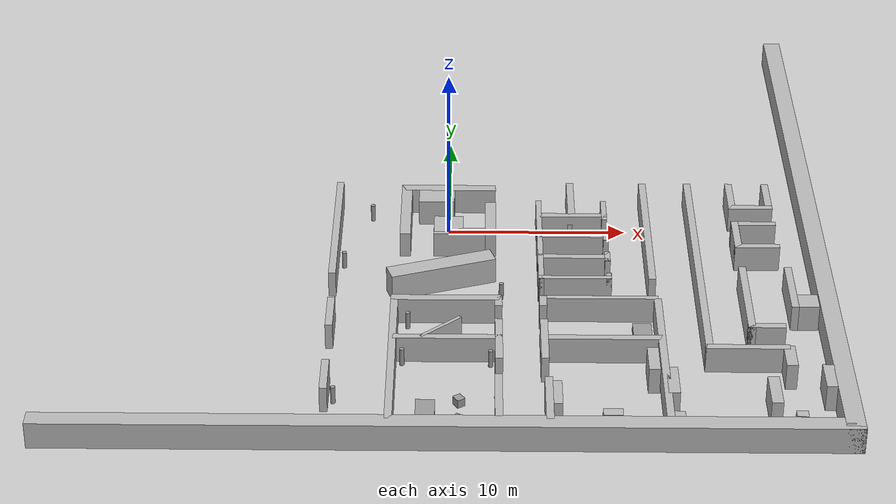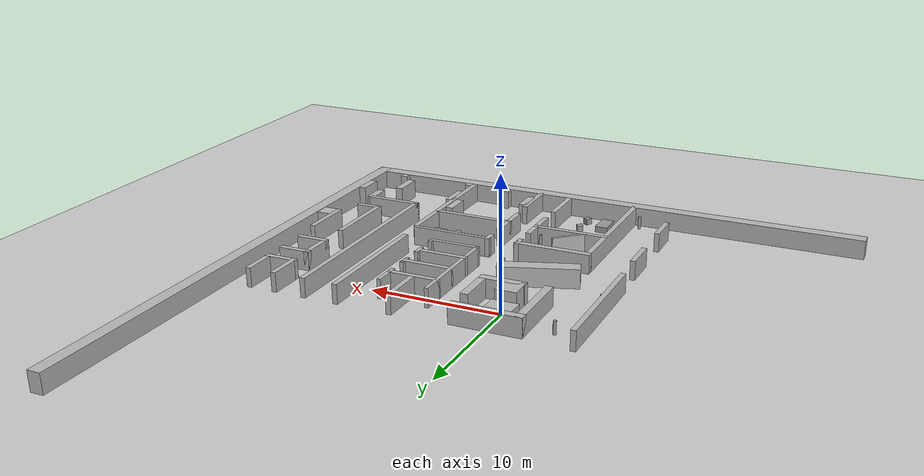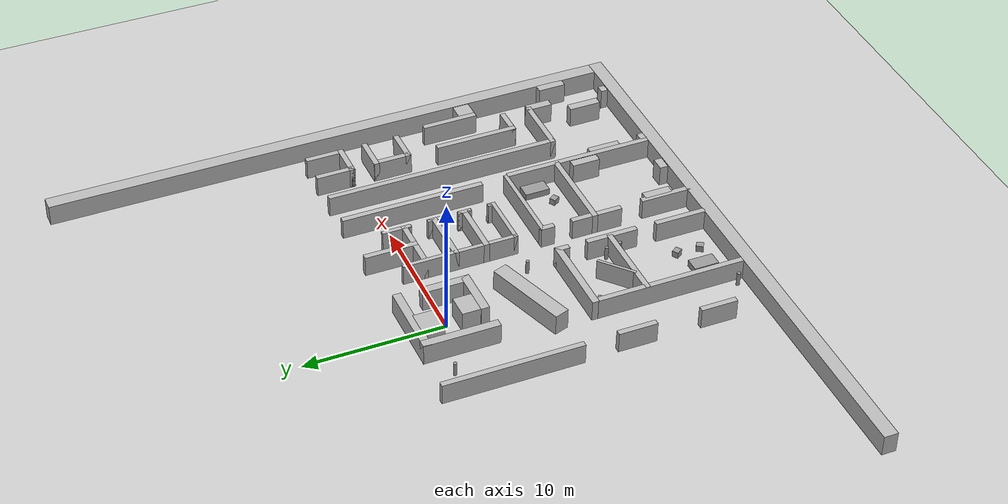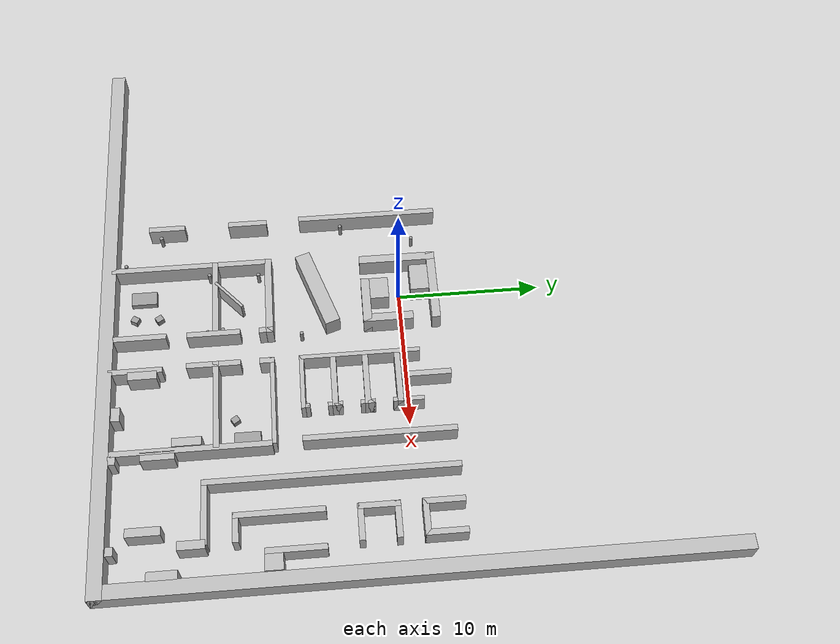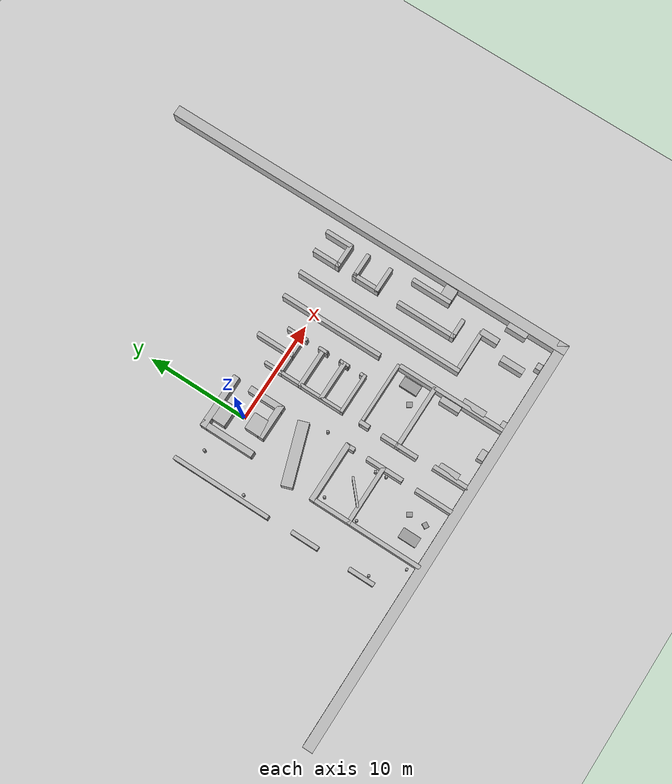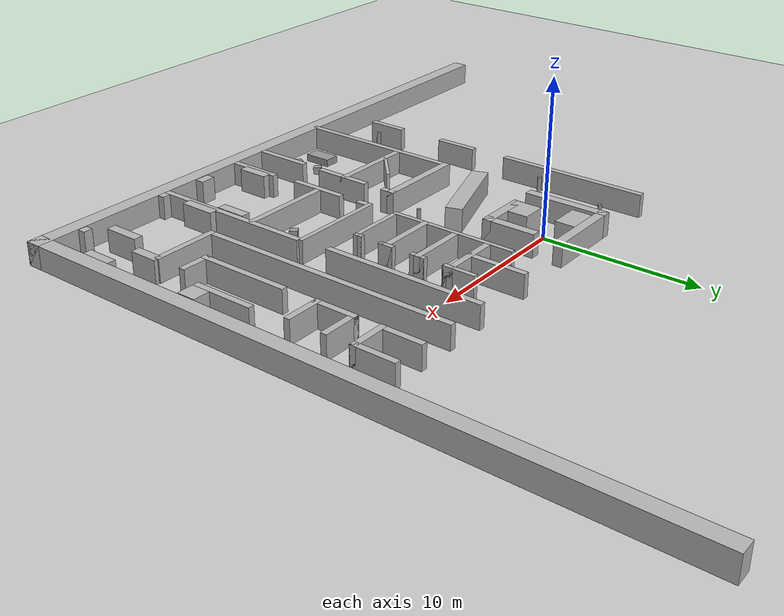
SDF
<sdf version="1.7">
 <world name="test_world">
  <model name="ground_plane">
   <static>1</static>
   <link name="link">
    <collision name="collision">
     <geometry><plane><normal>0 0 1</normal><size>100 100</size></plane></geometry>
    </collision>
    <visual name="visual">
     <geometry><plane><normal>0 0 1</normal><size>100 100</size></plane></geometry>
     <material>
      <script>
       <uri>file://media/materials/scripts/gazebo.material</uri>
       <name>__default__</name>
       <n>Gazebo/Grey</n>
      </script>
     </material>
    </visual>
   </link>
  </model>
  <model name="outer_bottom">
   <static>1</static>
   <pose>0 -20.5 0.75 0 -0 0</pose>
   <link name="link">
    <collision name="collision"><geometry><box><size>42 1 1.5</size></box></geometry></collision>
    <visual name="visual">
     <geometry><box><size>42 1 1.5</size></box></geometry>
     <material>
      <script>
       <uri>file://media/materials/scripts/gazebo.material</uri>
       <name>__default__</name>
       <n>Gazebo/Grey</n>
      </script>
     </material>
    </visual>
   </link>
  </model>
  <model name="outer_right">
   <static>1</static>
   <pose>20.5 0 0.75 0 -0 0</pose>
   <link name="link">
    <collision name="collision"><geometry><box><size>1 42 1.5</size></box></geometry></collision>
    <visual name="visual">
     <geometry><box><size>1 42 1.5</size></box></geometry>
     <material>
      <script>
       <uri>file://media/materials/scripts/gazebo.material</uri>
       <name>__default__</name>
       <n>Gazebo/Grey</n>
      </script>
     </material>
    </visual>
   </link>
  </model>
  <model name="hw_23">
   <static>1</static>
   <pose>-0.380805 -5.75282 0.75 0 -0 0.325273</pose>
   <link name="link">
    <collision name="collision"><geometry><box><size>6 1.07714 1.5</size></box></geometry></collision>
    <visual name="visual">
     <geometry><box><size>6 1.07714 1.5</size></box></geometry>
     <material>
      <script>
       <uri>file://media/materials/scripts/gazebo.material</uri>
       <name>__default__</name>
       <n>Gazebo/Grey</n>
      </script>
     </material>
    </visual>
   </link>
  </model>
  <model name="hw_24">
   <static>1</static>
   <pose>-0.05 -9.2 0.75 0 -0 0</pose>
   <link name="link">
    <collision name="collision"><geometry><box><size>6 0.5 1.5</size></box></geometry></collision>
    <visual name="visual">
     <geometry><box><size>6 0.5 1.5</size></box></geometry>
     <material>
      <script>
       <uri>file://media/materials/scripts/gazebo.material</uri>
       <name>__default__</name>
       <n>Gazebo/Grey</n>
      </script>
     </material>
    </visual>
   </link>
  </model>
  <model name="hw_25">
   <static>1</static>
   <pose>-0.05 -12.95 0.75 0 -0 0</pose>
   <link name="link">
    <collision name="collision"><geometry><box><size>6 0.4 1.5</size></box></geometry></collision>
    <visual name="visual">
     <geometry><box><size>6 0.4 1.5</size></box></geometry>
     <material>
      <script>
       <uri>file://media/materials/scripts/gazebo.material</uri>
       <name>__default__</name>
       <n>Gazebo/Grey</n>
      </script>
     </material>
    </visual>
   </link>
  </model>
  <model name="hw_30">
   <static>1</static>
   <pose>-0.05 2.45 0.75 0 -0 0</pose>
   <link name="link">
    <collision name="collision"><geometry><box><size>5.4 0.6 1.5</size></box></geometry></collision>
    <visual name="visual">
     <geometry><box><size>5.4 0.6 1.5</size></box></geometry>
     <material>
      <script>
       <uri>file://media/materials/scripts/gazebo.material</uri>
       <name>__default__</name>
       <n>Gazebo/Grey</n>
      </script>
     </material>
    </visual>
   </link>
  </model>
  <model name="hw_31">
   <static>1</static>
   <pose>0.9 -2.35 0.75 0 -0 0</pose>
   <link name="link">
    <collision name="collision"><geometry><box><size>3.5 0.6 1.5</size></box></geometry></collision>
    <visual name="visual">
     <geometry><box><size>3.5 0.6 1.5</size></box></geometry>
     <material>
      <script>
       <uri>file://media/materials/scripts/gazebo.material</uri>
       <name>__default__</name>
       <n>Gazebo/Grey</n>
      </script>
     </material>
    </visual>
   </link>
  </model>
  <model name="hw_48">
   <static>1</static>
   <pose>6.95 -0.55 0.75 0 -0 0</pose>
   <link name="link">
    <collision name="collision"><geometry><box><size>4 0.4 1.5</size></box></geometry></collision>
    <visual name="visual">
     <geometry><box><size>4 0.4 1.5</size></box></geometry>
     <material>
      <script>
       <uri>file://media/materials/scripts/gazebo.material</uri>
       <name>__default__</name>
       <n>Gazebo/Grey</n>
      </script>
     </material>
    </visual>
   </link>
  </model>
  <model name="hw_49">
   <static>1</static>
   <pose>6.95 -2.75 0.75 0 -0 0</pose>
   <link name="link">
    <collision name="collision"><geometry><box><size>4 0.4 1.5</size></box></geometry></collision>
    <visual name="visual">
     <geometry><box><size>4 0.4 1.5</size></box></geometry>
     <material>
      <script>
       <uri>file://media/materials/scripts/gazebo.material</uri>
       <name>__default__</name>
       <n>Gazebo/Grey</n>
      </script>
     </material>
    </visual>
   </link>
  </model>
  <model name="hw_50">
   <static>1</static>
   <pose>6.95 -4.95 0.75 0 -0 0</pose>
   <link name="link">
    <collision name="collision"><geometry><box><size>4 0.4 1.5</size></box></geometry></collision>
    <visual name="visual">
     <geometry><box><size>4 0.4 1.5</size></box></geometry>
     <material>
      <script>
       <uri>file://media/materials/scripts/gazebo.material</uri>
       <name>__default__</name>
       <n>Gazebo/Grey</n>
      </script>
     </material>
    </visual>
   </link>
  </model>
  <model name="hw_51">
   <static>1</static>
   <pose>6.95 -7.1 0.75 0 -0 0</pose>
   <link name="link">
    <collision name="collision"><geometry><box><size>4 0.3 1.5</size></box></geometry></collision>
    <visual name="visual">
     <geometry><box><size>4 0.3 1.5</size></box></geometry>
     <material>
      <script>
       <uri>file://media/materials/scripts/gazebo.material</uri>
       <name>__default__</name>
       <n>Gazebo/Grey</n>
      </script>
     </material>
    </visual>
   </link>
  </model>
  <model name="hw_53">
   <static>1</static>
   <pose>8.15 -9.1 0.75 0 -0 0</pose>
   <link name="link">
    <collision name="collision"><geometry><box><size>6.4 0.3 1.5</size></box></geometry></collision>
    <visual name="visual">
     <geometry><box><size>6.4 0.3 1.5</size></box></geometry>
     <material>
      <script>
       <uri>file://media/materials/scripts/gazebo.material</uri>
       <name>__default__</name>
       <n>Gazebo/Grey</n>
      </script>
     </material>
    </visual>
   </link>
  </model>
  <model name="hw_54">
   <static>1</static>
   <pose>8.15 -12.95 0.75 0 -0 0</pose>
   <link name="link">
    <collision name="collision"><geometry><box><size>6.4 0.4 1.5</size></box></geometry></collision>
    <visual name="visual">
     <geometry><box><size>6.4 0.4 1.5</size></box></geometry>
     <material>
      <script>
       <uri>file://media/materials/scripts/gazebo.material</uri>
       <name>__default__</name>
       <n>Gazebo/Grey</n>
      </script>
     </material>
    </visual>
   </link>
  </model>
  <model name="hw_94">
   <static>1</static>
   <pose>8.45 -19.65 0.75 0 -0 0</pose>
   <link name="link">
    <collision name="collision"><geometry><box><size>1 0.6 1.5</size></box></geometry></collision>
    <visual name="visual">
     <geometry><box><size>1 0.6 1.5</size></box></geometry>
     <material>
      <script>
       <uri>file://media/materials/scripts/gazebo.material</uri>
       <name>__default__</name>
       <n>Gazebo/Grey</n>
      </script>
     </material>
    </visual>
   </link>
  </model>
  <model name="hw_104">
   <static>1</static>
   <pose>8.8 -0.9 0.75 0 -0 0</pose>
   <link name="link">
    <collision name="collision"><geometry><box><size>0.3 0.3 1.5</size></box></geometry></collision>
    <visual name="visual">
     <geometry><box><size>0.3 0.3 1.5</size></box></geometry>
     <material>
      <script>
       <uri>file://media/materials/scripts/gazebo.material</uri>
       <name>__default__</name>
       <n>Gazebo/Grey</n>
      </script>
     </material>
    </visual>
   </link>
  </model>
  <model name="hw_105">
   <static>1</static>
   <pose>8.8 -2.4 0.75 0 -0 0</pose>
   <link name="link">
    <collision name="collision"><geometry><box><size>0.3 0.3 1.5</size></box></geometry></collision>
    <visual name="visual">
     <geometry><box><size>0.3 0.3 1.5</size></box></geometry>
     <material>
      <script>
       <uri>file://media/materials/scripts/gazebo.material</uri>
       <name>__default__</name>
       <n>Gazebo/Grey</n>
      </script>
     </material>
    </visual>
   </link>
  </model>
  <model name="hw_106">
   <static>1</static>
   <pose>8.8 -3.1 0.75 0 -0 0</pose>
   <link name="link">
    <collision name="collision"><geometry><box><size>0.3 0.3 1.5</size></box></geometry></collision>
    <visual name="visual">
     <geometry><box><size>0.3 0.3 1.5</size></box></geometry>
     <material>
      <script>
       <uri>file://media/materials/scripts/gazebo.material</uri>
       <name>__default__</name>
       <n>Gazebo/Grey</n>
      </script>
     </material>
    </visual>
   </link>
  </model>
  <model name="hw_107">
   <static>1</static>
   <pose>8.8 -4.6 0.75 0 -0 0</pose>
   <link name="link">
    <collision name="collision"><geometry><box><size>0.3 0.3 1.5</size></box></geometry></collision>
    <visual name="visual">
     <geometry><box><size>0.3 0.3 1.5</size></box></geometry>
     <material>
      <script>
       <uri>file://media/materials/scripts/gazebo.material</uri>
       <name>__default__</name>
       <n>Gazebo/Grey</n>
      </script>
     </material>
    </visual>
   </link>
  </model>
  <model name="hw_108">
   <static>1</static>
   <pose>8.8 -5.3 0.75 0 -0 0</pose>
   <link name="link">
    <collision name="collision"><geometry><box><size>0.3 0.3 1.5</size></box></geometry></collision>
    <visual name="visual">
     <geometry><box><size>0.3 0.3 1.5</size></box></geometry>
     <material>
      <script>
       <uri>file://media/materials/scripts/gazebo.material</uri>
       <name>__default__</name>
       <n>Gazebo/Grey</n>
      </script>
     </material>
    </visual>
   </link>
  </model>
  <model name="hw_109">
   <static>1</static>
   <pose>8.8 -6.8 0.75 0 -0 0</pose>
   <link name="link">
    <collision name="collision"><geometry><box><size>0.3 0.3 1.5</size></box></geometry></collision>
    <visual name="visual">
     <geometry><box><size>0.3 0.3 1.5</size></box></geometry>
     <material>
      <script>
       <uri>file://media/materials/scripts/gazebo.material</uri>
       <name>__default__</name>
       <n>Gazebo/Grey</n>
      </script>
     </material>
    </visual>
   </link>
  </model>
  <model name="hw_122">
   <static>1</static>
   <pose>11.7712 -19.793 0.75 0 -0 0</pose>
   <link name="link">
    <collision name="collision"><geometry><box><size>0.6 0.5 1.5</size></box></geometry></collision>
    <visual name="visual">
     <geometry><box><size>0.6 0.5 1.5</size></box></geometry>
     <material>
      <script>
       <uri>file://media/materials/scripts/gazebo.material</uri>
       <name>__default__</name>
       <n>Gazebo/Grey</n>
      </script>
     </material>
    </visual>
   </link>
  </model>
  <model name="hw_123">
   <static>1</static>
   <pose>15.75 -13.75 0.75 0 -0 0</pose>
   <link name="link">
    <collision name="collision"><geometry><box><size>4.4 0.4 1.5</size></box></geometry></collision>
    <visual name="visual">
     <geometry><box><size>4.4 0.4 1.5</size></box></geometry>
     <material>
      <script>
       <uri>file://media/materials/scripts/gazebo.material</uri>
       <name>__default__</name>
       <n>Gazebo/Grey</n>
      </script>
     </material>
    </visual>
   </link>
  </model>
  <model name="hw_124">
   <static>1</static>
   <pose>17.9376 -19.7 0.75 0 -0 0</pose>
   <link name="link">
    <collision name="collision"><geometry><box><size>0.6 0.5 1.5</size></box></geometry></collision>
    <visual name="visual">
     <geometry><box><size>0.6 0.5 1.5</size></box></geometry>
     <material>
      <script>
       <uri>file://media/materials/scripts/gazebo.material</uri>
       <name>__default__</name>
       <n>Gazebo/Grey</n>
      </script>
     </material>
    </visual>
   </link>
  </model>
  <model name="hw_128">
   <static>1</static>
   <pose>16.95 -11.75 0.75 0 -0 0</pose>
   <link name="link">
    <collision name="collision"><geometry><box><size>2 0.4 1.5</size></box></geometry></collision>
    <visual name="visual">
     <geometry><box><size>2 0.4 1.5</size></box></geometry>
     <material>
      <script>
       <uri>file://media/materials/scripts/gazebo.material</uri>
       <name>__default__</name>
       <n>Gazebo/Grey</n>
      </script>
     </material>
    </visual>
   </link>
  </model>
  <model name="hw_129">
   <static>1</static>
   <pose>17.2 0.45 0.75 0 -0 0</pose>
   <link name="link">
    <collision name="collision"><geometry><box><size>2.5 0.4 1.5</size></box></geometry></collision>
    <visual name="visual">
     <geometry><box><size>2.5 0.4 1.5</size></box></geometry>
     <material>
      <script>
       <uri>file://media/materials/scripts/gazebo.material</uri>
       <name>__default__</name>
       <n>Gazebo/Grey</n>
      </script>
     </material>
    </visual>
   </link>
  </model>
  <model name="hw_130">
   <static>1</static>
   <pose>17.2 -1.35 0.75 0 -0 0</pose>
   <link name="link">
    <collision name="collision"><geometry><box><size>2.5 0.4 1.5</size></box></geometry></collision>
    <visual name="visual">
     <geometry><box><size>2.5 0.4 1.5</size></box></geometry>
     <material>
      <script>
       <uri>file://media/materials/scripts/gazebo.material</uri>
       <name>__default__</name>
       <n>Gazebo/Grey</n>
      </script>
     </material>
    </visual>
   </link>
  </model>
  <model name="hw_131">
   <static>1</static>
   <pose>17.2 -3.75 0.75 0 -0 0</pose>
   <link name="link">
    <collision name="collision"><geometry><box><size>2.5 0.4 1.5</size></box></geometry></collision>
    <visual name="visual">
     <geometry><box><size>2.5 0.4 1.5</size></box></geometry>
     <material>
      <script>
       <uri>file://media/materials/scripts/gazebo.material</uri>
       <name>__default__</name>
       <n>Gazebo/Grey</n>
      </script>
     </material>
    </visual>
   </link>
  </model>
  <model name="vw_229">
   <static>1</static>
   <pose>16.15 1.65 0.75 0 -0 0</pose>
   <link name="link">
    <collision name="collision"><geometry><box><size>0.4 2.8 1.5</size></box></geometry></collision>
    <visual name="visual">
     <geometry><box><size>0.4 2.8 1.5</size></box></geometry>
     <material>
      <script>
       <uri>file://media/materials/scripts/gazebo.material</uri>
       <name>__default__</name>
       <n>Gazebo/Grey</n>
      </script>
     </material>
    </visual>
   </link>
  </model>
  <model name="vw_230">
   <static>1</static>
   <pose>18.25 1.65 0.75 0 -0 0</pose>
   <link name="link">
    <collision name="collision"><geometry><box><size>0.4 2.8 1.5</size></box></geometry></collision>
    <visual name="visual">
     <geometry><box><size>0.4 2.8 1.5</size></box></geometry>
     <material>
      <script>
       <uri>file://media/materials/scripts/gazebo.material</uri>
       <name>__default__</name>
       <n>Gazebo/Grey</n>
      </script>
     </material>
    </visual>
   </link>
  </model>
  <model name="vw_231">
   <static>1</static>
   <pose>6.95 1.15 0.75 0 -0 0</pose>
   <link name="link">
    <collision name="collision"><geometry><box><size>0.4 3.8 1.5</size></box></geometry></collision>
    <visual name="visual">
     <geometry><box><size>0.4 3.8 1.5</size></box></geometry>
     <material>
      <script>
       <uri>file://media/materials/scripts/gazebo.material</uri>
       <name>__default__</name>
       <n>Gazebo/Grey</n>
      </script>
     </material>
    </visual>
   </link>
  </model>
  <model name="vw_232">
   <static>1</static>
   <pose>-6.35 -1.9 0.75 0 -0 0</pose>
   <link name="link">
    <collision name="collision"><geometry><box><size>0.4 9.9 1.5</size></box></geometry></collision>
    <visual name="visual">
     <geometry><box><size>0.4 9.9 1.5</size></box></geometry>
     <material>
      <script>
       <uri>file://media/materials/scripts/gazebo.material</uri>
       <name>__default__</name>
       <n>Gazebo/Grey</n>
      </script>
     </material>
    </visual>
   </link>
  </model>
  <model name="vw_233">
   <static>1</static>
   <pose>11.15 -2.1 0.75 0 -0 0</pose>
   <link name="link">
    <collision name="collision"><geometry><box><size>0.4 10.3 1.5</size></box></geometry></collision>
    <visual name="visual">
     <geometry><box><size>0.4 10.3 1.5</size></box></geometry>
     <material>
      <script>
       <uri>file://media/materials/scripts/gazebo.material</uri>
       <name>__default__</name>
       <n>Gazebo/Grey</n>
      </script>
     </material>
    </visual>
   </link>
  </model>
  <model name="vw_234">
   <static>1</static>
   <pose>13.75 -5.45 0.75 0 -0 0</pose>
   <link name="link">
    <collision name="collision"><geometry><box><size>0.4 17 1.5</size></box></geometry></collision>
    <visual name="visual">
     <geometry><box><size>0.4 17 1.5</size></box></geometry>
     <material>
      <script>
       <uri>file://media/materials/scripts/gazebo.material</uri>
       <name>__default__</name>
       <n>Gazebo/Grey</n>
      </script>
     </material>
    </visual>
   </link>
  </model>
  <model name="vw_235">
   <static>1</static>
   <pose>-2.45 0.05 0.75 0 -0 0</pose>
   <link name="link">
    <collision name="collision"><geometry><box><size>0.6 5.4 1.5</size></box></geometry></collision>
    <visual name="visual">
     <geometry><box><size>0.6 5.4 1.5</size></box></geometry>
     <material>
      <script>
       <uri>file://media/materials/scripts/gazebo.material</uri>
       <name>__default__</name>
       <n>Gazebo/Grey</n>
      </script>
     </material>
    </visual>
   </link>
  </model>
  <model name="vw_237">
   <static>1</static>
   <pose>8.8 0 0.75 0 -0 0</pose>
   <link name="link">
    <collision name="collision"><geometry><box><size>0.3 2.1 1.5</size></box></geometry></collision>
    <visual name="visual">
     <geometry><box><size>0.3 2.1 1.5</size></box></geometry>
     <material>
      <script>
       <uri>file://media/materials/scripts/gazebo.material</uri>
       <name>__default__</name>
       <n>Gazebo/Grey</n>
      </script>
     </material>
    </visual>
   </link>
  </model>
  <model name="vw_238">
   <static>1</static>
   <pose>5.1 -3.1 0.75 0 -0 0</pose>
   <link name="link">
    <collision name="collision"><geometry><box><size>0.3 8.3 1.5</size></box></geometry></collision>
    <visual name="visual">
     <geometry><box><size>0.3 8.3 1.5</size></box></geometry>
     <material>
      <script>
       <uri>file://media/materials/scripts/gazebo.material</uri>
       <name>__default__</name>
       <n>Gazebo/Grey</n>
      </script>
     </material>
    </visual>
   </link>
  </model>
  <model name="vw_239">
   <static>1</static>
   <pose>2.35 -0.9 0.75 0 -0 0</pose>
   <link name="link">
    <collision name="collision"><geometry><box><size>0.6 3.5 1.5</size></box></geometry></collision>
    <visual name="visual">
     <geometry><box><size>0.6 3.5 1.5</size></box></geometry>
     <material>
      <script>
       <uri>file://media/materials/scripts/gazebo.material</uri>
       <name>__default__</name>
       <n>Gazebo/Grey</n>
      </script>
     </material>
    </visual>
   </link>
  </model>
  <model name="vw_240">
   <static>1</static>
   <pose>16.15 -2.55 0.75 0 -0 0</pose>
   <link name="link">
    <collision name="collision"><geometry><box><size>0.4 2.8 1.5</size></box></geometry></collision>
    <visual name="visual">
     <geometry><box><size>0.4 2.8 1.5</size></box></geometry>
     <material>
      <script>
       <uri>file://media/materials/scripts/gazebo.material</uri>
       <name>__default__</name>
       <n>Gazebo/Grey</n>
      </script>
     </material>
    </visual>
   </link>
  </model>
  <model name="vw_243">
   <static>1</static>
   <pose>8.8 -2.75 0.75 0 -0 0</pose>
   <link name="link">
    <collision name="collision"><geometry><box><size>0.3 1 1.5</size></box></geometry></collision>
    <visual name="visual">
     <geometry><box><size>0.3 1 1.5</size></box></geometry>
     <material>
      <script>
       <uri>file://media/materials/scripts/gazebo.material</uri>
       <name>__default__</name>
       <n>Gazebo/Grey</n>
      </script>
     </material>
    </visual>
   </link>
  </model>
  <model name="vw_244">
   <static>1</static>
   <pose>8.8 -4.95 0.75 0 -0 0</pose>
   <link name="link">
    <collision name="collision"><geometry><box><size>0.3 1 1.5</size></box></geometry></collision>
    <visual name="visual">
     <geometry><box><size>0.3 1 1.5</size></box></geometry>
     <material>
      <script>
       <uri>file://media/materials/scripts/gazebo.material</uri>
       <name>__default__</name>
       <n>Gazebo/Grey</n>
      </script>
     </material>
    </visual>
   </link>
  </model>
  <model name="vw_245">
   <static>1</static>
   <pose>18.65 -7.95 0.75 0 -0 0</pose>
   <link name="link">
    <collision name="collision"><geometry><box><size>0.4 4 1.5</size></box></geometry></collision>
    <visual name="visual">
     <geometry><box><size>0.4 4 1.5</size></box></geometry>
     <material>
      <script>
       <uri>file://media/materials/scripts/gazebo.material</uri>
       <name>__default__</name>
       <n>Gazebo/Grey</n>
      </script>
     </material>
    </visual>
   </link>
  </model>
  <model name="vw_246">
   <static>1</static>
   <pose>16.15 -8.95 0.75 0 -0 0</pose>
   <link name="link">
    <collision name="collision"><geometry><box><size>0.4 6 1.5</size></box></geometry></collision>
    <visual name="visual">
     <geometry><box><size>0.4 6 1.5</size></box></geometry>
     <material>
      <script>
       <uri>file://media/materials/scripts/gazebo.material</uri>
       <name>__default__</name>
       <n>Gazebo/Grey</n>
      </script>
     </material>
    </visual>
   </link>
  </model>
  <model name="vw_247">
   <static>1</static>
   <pose>8.8 -6.95 0.75 0 -0 0</pose>
   <link name="link">
    <collision name="collision"><geometry><box><size>0.3 0.6 1.5</size></box></geometry></collision>
    <visual name="visual">
     <geometry><box><size>0.3 0.6 1.5</size></box></geometry>
     <material>
      <script>
       <uri>file://media/materials/scripts/gazebo.material</uri>
       <name>__default__</name>
       <n>Gazebo/Grey</n>
      </script>
     </material>
    </visual>
   </link>
  </model>
  <model name="vw_248">
   <static>1</static>
   <pose>19.4 -9.35 0.75 0 -0 0</pose>
   <link name="link">
    <collision name="collision"><geometry><box><size>1.1 1.2 1.5</size></box></geometry></collision>
    <visual name="visual">
     <geometry><box><size>1.1 1.2 1.5</size></box></geometry>
     <material>
      <script>
       <uri>file://media/materials/scripts/gazebo.material</uri>
       <name>__default__</name>
       <n>Gazebo/Grey</n>
      </script>
     </material>
    </visual>
   </link>
  </model>
  <model name="vw_249">
   <static>1</static>
   <pose>2.75 -9.45 0.75 0 -0 0</pose>
   <link name="link">
    <collision name="collision"><geometry><box><size>0.4 1 1.5</size></box></geometry></collision>
    <visual name="visual">
     <geometry><box><size>0.4 1 1.5</size></box></geometry>
     <material>
      <script>
       <uri>file://media/materials/scripts/gazebo.material</uri>
       <name>__default__</name>
       <n>Gazebo/Grey</n>
      </script>
     </material>
    </visual>
   </link>
  </model>
  <model name="vw_250">
   <static>1</static>
   <pose>5.15 -9.45 0.75 0 -0 0</pose>
   <link name="link">
    <collision name="collision"><geometry><box><size>0.4 1 1.5</size></box></geometry></collision>
    <visual name="visual">
     <geometry><box><size>0.4 1 1.5</size></box></geometry>
     <material>
      <script>
       <uri>file://media/materials/scripts/gazebo.material</uri>
       <name>__default__</name>
       <n>Gazebo/Grey</n>
      </script>
     </material>
    </visual>
   </link>
  </model>
  <model name="vw_253">
   <static>1</static>
   <pose>11.3218 -14.6183 0.75 0 -0 0</pose>
   <link name="link">
    <collision name="collision"><geometry><box><size>0.4 10.7833 1.5</size></box></geometry></collision>
    <visual name="visual">
     <geometry><box><size>0.4 10.7833 1.5</size></box></geometry>
     <material>
      <script>
       <uri>file://media/materials/scripts/gazebo.material</uri>
       <name>__default__</name>
       <n>Gazebo/Grey</n>
      </script>
     </material>
    </visual>
   </link>
  </model>
  <model name="vw_254">
   <static>1</static>
   <pose>2.75 -13.1 0.75 0 -0 0</pose>
   <link name="link">
    <collision name="collision"><geometry><box><size>0.4 3.7 1.5</size></box></geometry></collision>
    <visual name="visual">
     <geometry><box><size>0.4 3.7 1.5</size></box></geometry>
     <material>
      <script>
       <uri>file://media/materials/scripts/gazebo.material</uri>
       <name>__default__</name>
       <n>Gazebo/Grey</n>
      </script>
     </material>
    </visual>
   </link>
  </model>
  <model name="vw_255">
   <static>1</static>
   <pose>5.15 -13.1 0.75 0 -0 0</pose>
   <link name="link">
    <collision name="collision"><geometry><box><size>0.4 3.7 1.5</size></box></geometry></collision>
    <visual name="visual">
     <geometry><box><size>0.4 3.7 1.5</size></box></geometry>
     <material>
      <script>
       <uri>file://media/materials/scripts/gazebo.material</uri>
       <name>__default__</name>
       <n>Gazebo/Grey</n>
      </script>
     </material>
    </visual>
   </link>
  </model>
  <model name="vw_256">
   <static>1</static>
   <pose>-6.25 -16.45 0.75 0 -0 0</pose>
   <link name="link">
    <collision name="collision"><geometry><box><size>0.4 2.6 1.5</size></box></geometry></collision>
    <visual name="visual">
     <geometry><box><size>0.4 2.6 1.5</size></box></geometry>
     <material>
      <script>
       <uri>file://media/materials/scripts/gazebo.material</uri>
       <name>__default__</name>
       <n>Gazebo/Grey</n>
      </script>
     </material>
    </visual>
   </link>
  </model>
  <model name="vw_257">
   <static>1</static>
   <pose>11.65 -16.8 0.75 0 -0 0</pose>
   <link name="link">
    <collision name="collision"><geometry><box><size>0.6 2.3 1.5</size></box></geometry></collision>
    <visual name="visual">
     <geometry><box><size>0.6 2.3 1.5</size></box></geometry>
     <material>
      <script>
       <uri>file://media/materials/scripts/gazebo.material</uri>
       <name>__default__</name>
       <n>Gazebo/Grey</n>
      </script>
     </material>
    </visual>
   </link>
  </model>
  <model name="vw_258">
   <static>1</static>
   <pose>5.65 -17.95 0.75 0 -0 0</pose>
   <link name="link">
    <collision name="collision"><geometry><box><size>0.6 2 1.5</size></box></geometry></collision>
    <visual name="visual">
     <geometry><box><size>0.6 2 1.5</size></box></geometry>
     <material>
      <script>
       <uri>file://media/materials/scripts/gazebo.material</uri>
       <name>__default__</name>
       <n>Gazebo/Grey</n>
      </script>
     </material>
    </visual>
   </link>
  </model>
  <model name="vw_253_clone">
   <static>1</static>
   <pose>-2.85707 -14.8442 0.75 0 -0 0</pose>
   <link name="link">
    <collision name="collision"><geometry><box><size>0.4 10.9154 1.5</size></box></geometry></collision>
    <visual name="visual">
     <geometry><box><size>0.4 10.9154 1.5</size></box></geometry>
     <material>
      <script>
       <uri>file://media/materials/scripts/gazebo.material</uri>
       <name>__default__</name>
       <n>Gazebo/Grey</n>
      </script>
     </material>
    </visual>
   </link>
  </model>
  <model name="vw_254_clone">
   <static>1</static>
   <pose>2.71203 -18.2093 0.75 0 -0 0</pose>
   <link name="link">
    <collision name="collision"><geometry><box><size>0.4 3.7 1.5</size></box></geometry></collision>
    <visual name="visual">
     <geometry><box><size>0.4 3.7 1.5</size></box></geometry>
     <material>
      <script>
       <uri>file://media/materials/scripts/gazebo.material</uri>
       <name>__default__</name>
       <n>Gazebo/Grey</n>
      </script>
     </material>
    </visual>
   </link>
  </model>
  <model name="vw_254_clone_0">
   <static>1</static>
   <pose>5.28532 -18.4245 0.75 0 -0 0</pose>
   <link name="link">
    <collision name="collision"><geometry><box><size>0.4 3.7 1.5</size></box></geometry></collision>
    <visual name="visual">
     <geometry><box><size>0.4 3.7 1.5</size></box></geometry>
     <material>
      <script>
       <uri>file://media/materials/scripts/gazebo.material</uri>
       <name>__default__</name>
       <n>Gazebo/Grey</n>
      </script>
     </material>
    </visual>
   </link>
  </model>
  <model name="unit_box_clone">
   <pose>-1.04892 -18.1276 0.239131 0 1e-05 -5e-06</pose>
   <link name="link">
    <inertial>
     <mass>1</mass>
     <inertia>
      <ixx>0.166667</ixx>
      <ixy>0</ixy>
      <ixz>0</ixz>
      <iyy>0.166667</iyy>
      <iyz>0</iyz>
      <izz>0.166667</izz>
     </inertia>
    </inertial>
    <collision name="collision"><geometry><box><size>1 1.7849 0.478272</size></box></geometry></collision>
    <visual name="visual">
     <geometry><box><size>1 1.7849 0.478272</size></box></geometry>
     <material>
      <script><name>Gazebo/Grey</name><uri>file://media/materials/scripts/gazebo.material</uri></script>
     </material>
    </visual>
   </link>
  </model>
  <model name="unit_box_0">
   <pose>0.678588 -17.0336 0.235786 0 -0 0.572818</pose>
   <link name="link">
    <inertial>
     <mass>1</mass>
     <inertia>
      <ixx>0.166667</ixx>
      <ixy>0</ixy>
      <ixz>0</ixz>
      <iyy>0.166667</iyy>
      <iyz>0</iyz>
      <izz>0.166667</izz>
     </inertia>
    </inertial>
    <collision name="collision">
     <geometry><box><size>0.450934 0.510982 0.471572</size></box></geometry>
    </collision>
    <visual name="visual">
     <geometry><box><size>0.450934 0.510982 0.471572</size></box></geometry>
     <material>
      <script><name>Gazebo/Grey</name><uri>file://media/materials/scripts/gazebo.material</uri></script>
     </material>
    </visual>
   </link>
  </model>
  <model name="unit_box_0_clone">
   <pose>0.623996 -18.7315 0.235786 0 0 -0.520666</pose>
   <link name="link">
    <inertial>
     <mass>1</mass>
     <inertia>
      <ixx>0.166667</ixx>
      <ixy>0</ixy>
      <ixz>0</ixz>
      <iyy>0.166667</iyy>
      <iyz>0</iyz>
      <izz>0.166667</izz>
     </inertia>
    </inertial>
    <collision name="collision">
     <geometry><box><size>0.450934 0.510983 0.471572</size></box></geometry>
    </collision>
    <visual name="visual">
     <geometry><box><size>0.450934 0.510983 0.471572</size></box></geometry>
     <material>
      <script><name>Gazebo/Grey</name><uri>file://media/materials/scripts/gazebo.material</uri></script>
     </material>
    </visual>
   </link>
  </model>
  <model name="unit_cylinder_clone">
   <pose>-2.12146 -9.93955 0.499991 0 -0 -6.2e-05</pose>
   <link name="link">
    <inertial>
     <mass>1</mass>
     <inertia><ixx>0.145833</ixx><ixy>0</ixy><ixz>0</ixz><iyy>0.145833</iyy><iyz>0</iyz><izz>0.125</izz></inertia>
    </inertial>
    <collision name="collision">
     <geometry><cylinder><radius>0.124927</radius><length>1</length></cylinder></geometry>
    </collision>
    <visual name="visual">
     <geometry><cylinder><radius>0.124927</radius><length>1</length></cylinder></geometry>
     <material>
      <script><name>Gazebo/Grey</name><uri>file://media/materials/scripts/gazebo.material</uri></script>
     </material>
    </visual>
   </link>
  </model>
  <model name="unit_cylinder_clone_0">
   <pose>2.20827 -12.5009 0.499991 0 -0 -5.1e-05</pose>
   <link name="link">
    <inertial>
     <mass>1</mass>
     <inertia><ixx>0.145833</ixx><ixy>0</ixy><ixz>0</ixz><iyy>0.145833</iyy><iyz>0</iyz><izz>0.125</izz></inertia>
    </inertial>
    <collision name="collision">
     <geometry><cylinder><radius>0.124927</radius><length>1</length></cylinder></geometry>
    </collision>
    <visual name="visual">
     <geometry><cylinder><radius>0.124927</radius><length>1</length></cylinder></geometry>
     <material>
      <script><name>Gazebo/Grey</name><uri>file://media/materials/scripts/gazebo.material</uri></script>
     </material>
    </visual>
   </link>
  </model>
  <model name="unit_cylinder_clone_1">
   <pose>-2.34508 -13.428 0.499991 0 -0 -5.1e-05</pose>
   <link name="link">
    <inertial>
     <mass>1</mass>
     <inertia><ixx>0.145833</ixx><ixy>0</ixy><ixz>0</ixz><iyy>0.145833</iyy><iyz>0</iyz><izz>0.125</izz></inertia>
    </inertial>
    <collision name="collision">
     <geometry><cylinder><radius>0.124927</radius><length>1</length></cylinder></geometry>
    </collision>
    <visual name="visual">
     <geometry><cylinder><radius>0.124927</radius><length>1</length></cylinder></geometry>
     <material>
      <script><name>Gazebo/Grey</name><uri>file://media/materials/scripts/gazebo.material</uri></script>
     </material>
    </visual>
   </link>
  </model>
  <model name="unit_cylinder_clone_2">
   <pose>2.3254 -13.5476 0.5 0 0 -6.1e-05</pose>
   <link name="link">
    <inertial>
     <mass>1</mass>
     <inertia><ixx>0.145833</ixx><ixy>0</ixy><ixz>0</ixz><iyy>0.145833</iyy><iyz>0</iyz><izz>0.125</izz></inertia>
    </inertial>
    <collision name="collision">
     <geometry><cylinder><radius>0.124927</radius><length>1</length></cylinder></geometry>
    </collision>
    <visual name="visual">
     <geometry><cylinder><radius>0.124927</radius><length>1</length></cylinder></geometry>
     <material>
      <script><name>Gazebo/Grey</name><uri>file://media/materials/scripts/gazebo.material</uri></script>
     </material>
    </visual>
   </link>
  </model>
  <model name="unit_cylinder_clone_8">
   <pose>-3.54179 -19.4113 0.499991 0 -0 -6e-05</pose>
   <link name="link">
    <inertial>
     <mass>1</mass>
     <inertia><ixx>0.145833</ixx><ixy>0</ixy><ixz>0</ixz><iyy>0.145833</iyy><iyz>0</iyz><izz>0.125</izz></inertia>
    </inertial>
    <collision name="collision">
     <geometry><cylinder><radius>0.124927</radius><length>1</length></cylinder></geometry>
    </collision>
    <visual name="visual">
     <geometry><cylinder><radius>0.124927</radius><length>1</length></cylinder></geometry>
     <material>
      <script><name>Gazebo/Grey</name><uri>file://media/materials/scripts/gazebo.material</uri></script>
     </material>
    </visual>
   </link>
  </model>
  <model name="unit_cylinder_clone_9">
   <pose>-5.79484 -16.9242 0.499991 0 -0 -5.9e-05</pose>
   <link name="link">
    <inertial>
     <mass>1</mass>
     <inertia><ixx>0.145833</ixx><ixy>0</ixy><ixz>0</ixz><iyy>0.145833</iyy><iyz>0</iyz><izz>0.125</izz></inertia>
    </inertial>
    <collision name="collision">
     <geometry><cylinder><radius>0.124927</radius><length>1</length></cylinder></geometry>
    </collision>
    <visual name="visual">
     <geometry><cylinder><radius>0.124927</radius><length>1</length></cylinder></geometry>
     <material>
      <script><name>Gazebo/Grey</name><uri>file://media/materials/scripts/gazebo.material</uri></script>
     </material>
    </visual>
   </link>
  </model>
  <model name="unit_box_clone_clone">
   <pose>10.4498 -10.9558 0.23913 0 -1.1e-05 1.1e-05</pose>
   <link name="link">
    <inertial>
     <mass>1</mass>
     <inertia>
      <ixx>0.166667</ixx>
      <ixy>0</ixy>
      <ixz>0</ixz>
      <iyy>0.166667</iyy>
      <iyz>0</iyz>
      <izz>0.166667</izz>
     </inertia>
    </inertial>
    <collision name="collision"><geometry><box><size>1 1.7849 0.478272</size></box></geometry></collision>
    <visual name="visual">
     <geometry><box><size>1 1.7849 0.478272</size></box></geometry>
     <material>
      <script><name>Gazebo/Grey</name><uri>file://media/materials/scripts/gazebo.material</uri></script>
     </material>
    </visual>
   </link>
  </model>
  <model name="vw_258_clone">
   <static>1</static>
   <pose>10.7704 -14.8869 0.75 0 -0 0</pose>
   <link name="link">
    <collision name="collision"><geometry><box><size>0.6 2 1.5</size></box></geometry></collision>
    <visual name="visual">
     <geometry><box><size>0.6 2 1.5</size></box></geometry>
     <material>
      <script>
       <uri>file://media/materials/scripts/gazebo.material</uri>
       <name>__default__</name>
       <n>Gazebo/Grey</n>
      </script>
     </material>
    </visual>
   </link>
  </model>
  <model name="vw_258_clone_0">
   <static>1</static>
   <pose>19.7352 -16.3517 0.75 0 -0 0</pose>
   <link name="link">
    <collision name="collision"><geometry><box><size>0.6 2 1.5</size></box></geometry></collision>
    <visual name="visual">
     <geometry><box><size>0.6 2 1.5</size></box></geometry>
     <material>
      <script>
       <uri>file://media/materials/scripts/gazebo.material</uri>
       <name>__default__</name>
       <n>Gazebo/Grey</n>
      </script>
     </material>
    </visual>
   </link>
  </model>
  <model name="unit_box_0_clone_0">
   <pose>8.96749 -11.7589 0.235786 0 -0 0.572818</pose>
   <link name="link">
    <inertial>
     <mass>1</mass>
     <inertia>
      <ixx>0.166667</ixx>
      <ixy>0</ixy>
      <ixz>0</ixz>
      <iyy>0.166667</iyy>
      <iyz>0</iyz>
      <izz>0.166667</izz>
     </inertia>
    </inertial>
    <collision name="collision">
     <geometry><box><size>0.450934 0.510982 0.471572</size></box></geometry>
    </collision>
    <visual name="visual">
     <geometry><box><size>0.450934 0.510982 0.471572</size></box></geometry>
     <material>
      <script><name>Gazebo/Grey</name><uri>file://media/materials/scripts/gazebo.material</uri></script>
     </material>
    </visual>
   </link>
  </model>
  <model name="unit_cylinder_clone_1_clone">
   <pose>-5.82438 -3.86156 0.499991 0 -0 -6.2e-05</pose>
   <link name="link">
    <inertial>
     <mass>1</mass>
     <inertia><ixx>0.145833</ixx><ixy>0</ixy><ixz>0</ixz><iyy>0.145833</iyy><iyz>0</iyz><izz>0.125</izz></inertia>
    </inertial>
    <collision name="collision">
     <geometry><cylinder><radius>0.124927</radius><length>1</length></cylinder></geometry>
    </collision>
    <visual name="visual">
     <geometry><cylinder><radius>0.124927</radius><length>1</length></cylinder></geometry>
     <material>
      <script><name>Gazebo/Grey</name><uri>file://media/materials/scripts/gazebo.material</uri></script>
     </material>
    </visual>
   </link>
  </model>
  <model name="vw_256_clone">
   <static>1</static>
   <pose>-6.26075 -10.6042 0.75 0 -0 0</pose>
   <link name="link">
    <collision name="collision"><geometry><box><size>0.4 2.75577 1.5</size></box></geometry></collision>
    <visual name="visual">
     <geometry><box><size>0.4 2.75577 1.5</size></box></geometry>
     <material>
      <script>
       <uri>file://media/materials/scripts/gazebo.material</uri>
       <name>__default__</name>
       <n>Gazebo/Grey</n>
      </script>
     </material>
    </visual>
   </link>
  </model>
  <model name="vw_239_clone">
   <static>1</static>
   <pose>-0.723225 1.56205 0.75 0 -0 0</pose>
   <link name="link">
    <collision name="collision"><geometry><box><size>2.03051 1.43423 1.5</size></box></geometry></collision>
    <visual name="visual">
     <geometry><box><size>2.03051 1.43423 1.5</size></box></geometry>
     <material>
      <script>
       <uri>file://media/materials/scripts/gazebo.material</uri>
       <name>__default__</name>
       <n>Gazebo/Grey</n>
      </script>
     </material>
    </visual>
   </link>
  </model>
  <model name="vw_239_clone_clone">
   <static>1</static>
   <pose>-0.010533 -1.58065 0.75 0 -0 0</pose>
   <link name="link">
    <collision name="collision"><geometry><box><size>1.64267 1.69148 1.5</size></box></geometry></collision>
    <visual name="visual">
     <geometry><box><size>1.64267 1.69148 1.5</size></box></geometry>
     <material>
      <script>
       <uri>file://media/materials/scripts/gazebo.material</uri>
       <name>__default__</name>
       <n>Gazebo/Grey</n>
      </script>
     </material>
    </visual>
   </link>
  </model>
  <model name="vw_257_clone">
   <static>1</static>
   <pose>16.798 -17.6232 0.75 0 -0 0</pose>
   <link name="link">
    <collision name="collision"><geometry><box><size>0.6 2.3 1.5</size></box></geometry></collision>
    <visual name="visual">
     <geometry><box><size>0.6 2.3 1.5</size></box></geometry>
     <material>
      <script>
       <uri>file://media/materials/scripts/gazebo.material</uri>
       <name>__default__</name>
       <n>Gazebo/Grey</n>
      </script>
     </material>
    </visual>
   </link>
  </model>
  <model name="hw_122_clone">
   <static>1</static>
   <pose>17.8966 -14.5489 0.75 0 -0 0</pose>
   <link name="link">
    <collision name="collision"><geometry><box><size>0.6 1.82338 1.5</size></box></geometry></collision>
    <visual name="visual">
     <geometry><box><size>0.6 1.82338 1.5</size></box></geometry>
     <material>
      <script>
       <uri>file://media/materials/scripts/gazebo.material</uri>
       <name>__default__</name>
       <n>Gazebo/Grey</n>
      </script>
     </material>
    </visual>
   </link>
  </model>
  <model name="unit_cylinder_clone_3_clone_2">
   <pose>2.92143 -7.02316 0.49999 -0 -0 -5.7e-05</pose>
   <link name="link">
    <inertial>
     <mass>1</mass>
     <inertia><ixx>0.145833</ixx><ixy>0</ixy><ixz>0</ixz><iyy>0.145833</iyy><iyz>0</iyz><izz>0.125</izz></inertia>
    </inertial>
    <collision name="collision">
     <geometry><cylinder><radius>0.124927</radius><length>1</length></cylinder></geometry>
    </collision>
    <visual name="visual">
     <geometry><cylinder><radius>0.124927</radius><length>1</length></cylinder></geometry>
     <material>
      <script><name>Gazebo/Grey</name><uri>file://media/materials/scripts/gazebo.material</uri></script>
     </material>
    </visual>
   </link>
  </model>
  <model name="diagonal_wall_clone_clone">
   <static>1</static>
   <pose>-0.329918 -12.0072 0.75 0 -0 0.729246</pose>
   <link name="link">
    <collision name="collision"><geometry><box><size>2.8087 0.2 1.5</size></box></geometry></collision>
    <visual name="visual">
     <geometry><box><size>2.8087 0.2 1.5</size></box></geometry>
     <material>
      <script>
       <uri>file://media/materials/scripts/gazebo.material</uri>
       <name>__default__</name>
       <n>Gazebo/Grey</n>
      </script>
     </material>
    </visual>
   </link>
  </model>
  <model name="unit_cylinder_clone_3_clone_clone_5">
   <pose>-4.40225 1.2546 0.499999 0 0 -5.4e-05</pose>
   <link name="link">
    <inertial>
     <mass>1</mass>
     <inertia><ixx>0.145833</ixx><ixy>0</ixy><ixz>0</ixz><iyy>0.145833</iyy><iyz>0</iyz><izz>0.125</izz></inertia>
    </inertial>
    <collision name="collision">
     <geometry><cylinder><radius>0.124927</radius><length>1</length></cylinder></geometry>
    </collision>
    <visual name="visual">
     <geometry><cylinder><radius>0.124927</radius><length>1</length></cylinder></geometry>
     <material>
      <script><name>Gazebo/Grey</name><uri>file://media/materials/scripts/gazebo.material</uri></script>
     </material>
    </visual>
   </link>
  </model>
 </world>
</sdf>
